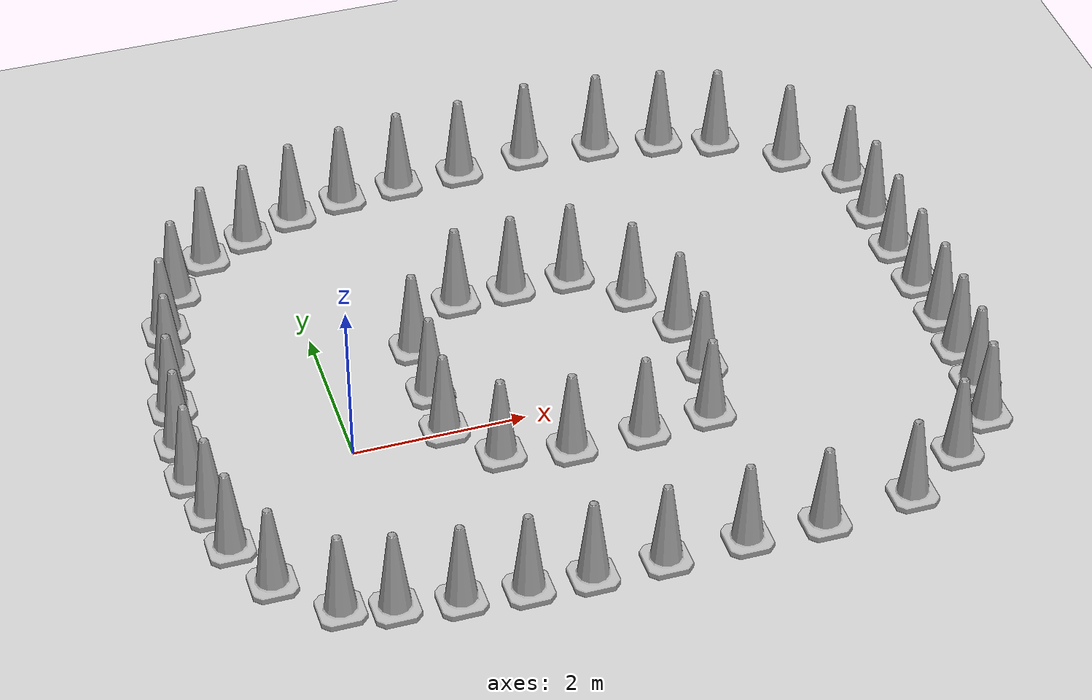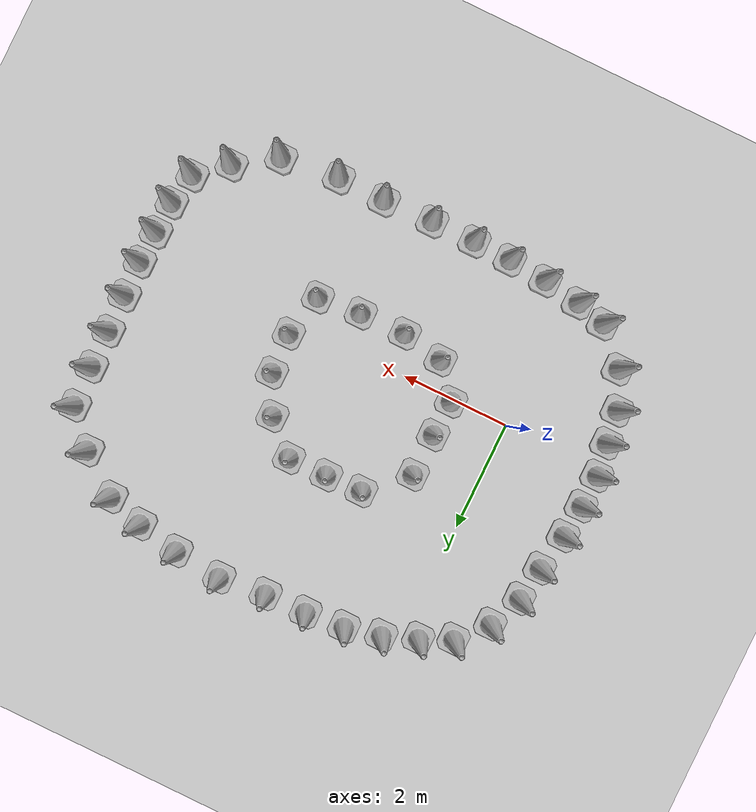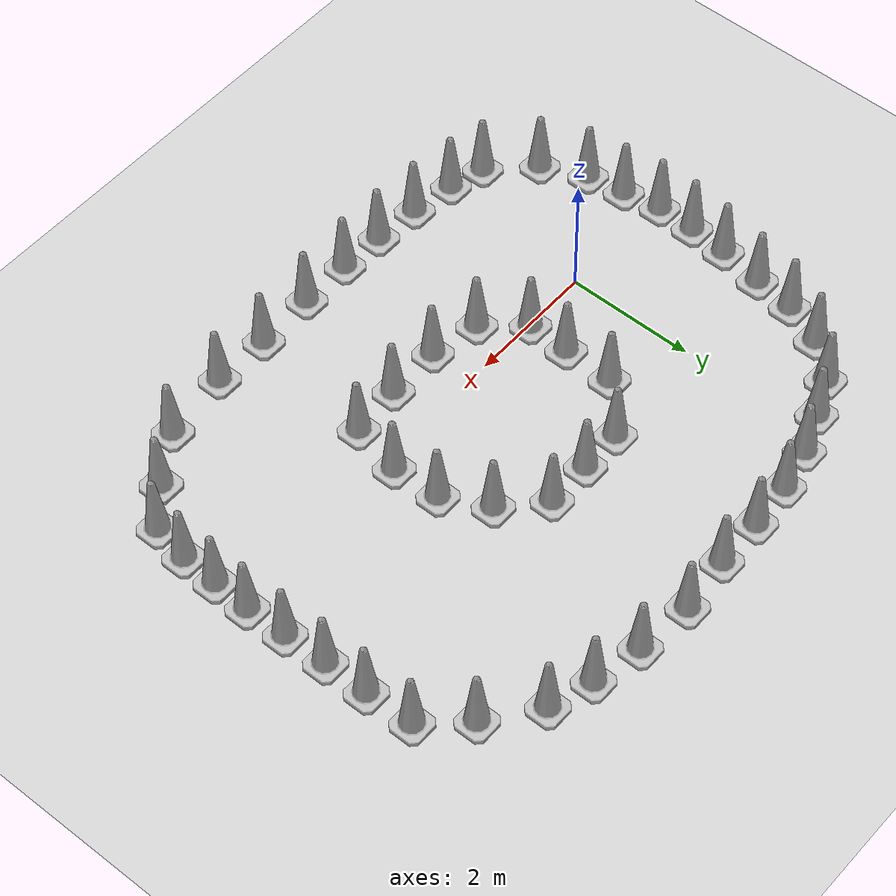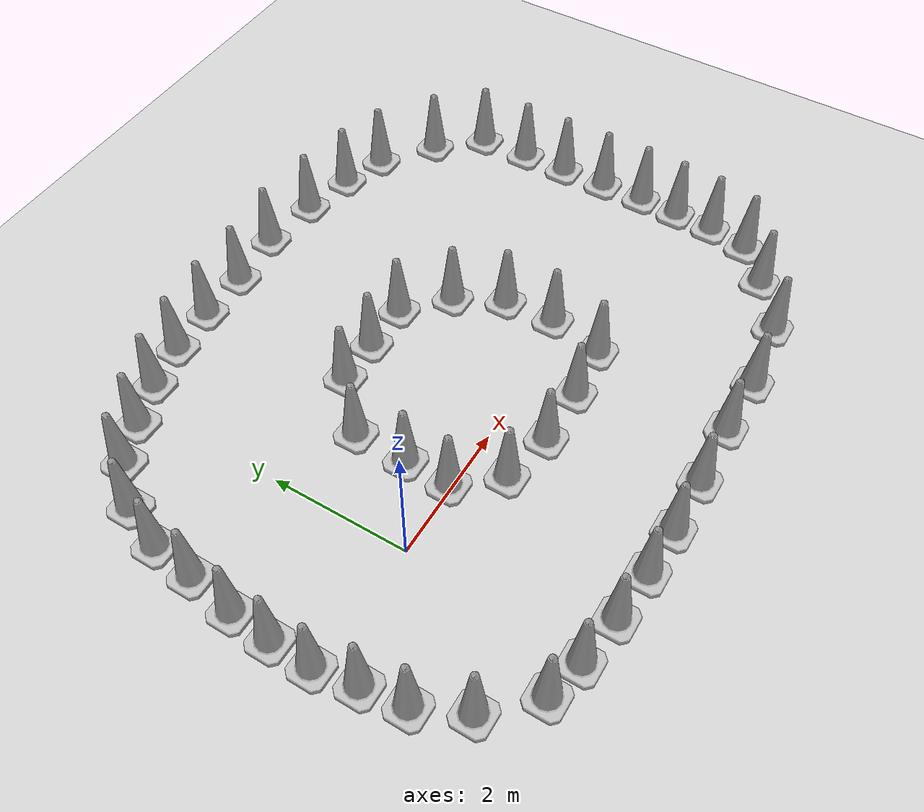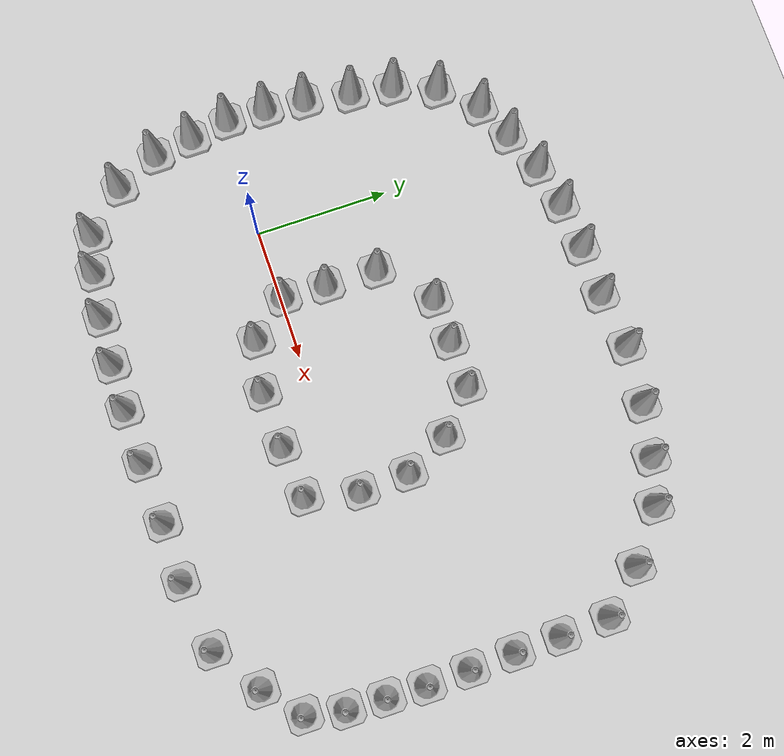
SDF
<sdf version="1.7">
 <world name="default">
  <light name="sun" type="directional">
   <pose>0 0 10 0 -0 0</pose>
   <diffuse>0.8 0.8 0.8 1</diffuse>
   <specular>0.2 0.2 0.2 1</specular>
   <attenuation>
    <range>1000</range>
    <constant>0.9</constant>
    <linear>0.01</linear>
    <quadratic>0.001</quadratic>
   </attenuation>
   <direction>-0.5 0.1 -0.9</direction>
   <spot><inner_angle>0</inner_angle><outer_angle>0</outer_angle><falloff>0</falloff></spot>
  </light>
  <model name="ground_plane">
   <static>1</static>
   <link name="link">
    <collision name="collision">
     <geometry><plane><normal>0 0 1</normal><size>100 100</size></plane></geometry>
     <surface>
      <contact><collide_bitmask>65535</collide_bitmask></contact>
      <friction><ode><mu>100</mu><mu2>50</mu2></ode></friction>
     </surface>
    </collision>
    <visual name="visual">
     <cast_shadows>0</cast_shadows>
     <geometry><plane><normal>0 0 1</normal><size>100 100</size></plane></geometry>
     <material>
      <script><uri>file://media/materials/scripts/gazebo.material</uri><name>Gazebo/Grey</name></script>
     </material>
    </visual>
   </link>
  </model>
  <gravity>0 0 -9.8</gravity>
  <magnetic_field>6e-06 2.3e-05 -4.2e-05</magnetic_field>
  <atmosphere type="adiabatic"/>
  <physics type="ode">
   <max_step_size>0.001</max_step_size>
   <real_time_factor>1</real_time_factor>
   <real_time_update_rate>1000</real_time_update_rate>
  </physics>
  <scene><ambient>0.4 0.4 0.4 1</ambient><background>0.7 0.7 0.7 1</background><shadows>1</shadows></scene>
  <audio><device>default</device></audio>
  <spherical_coordinates>
   <surface_model>EARTH_WGS84</surface_model>
   <latitude_deg>0</latitude_deg>
   <longitude_deg>0</longitude_deg>
   <elevation>0</elevation>
   <heading_deg>0</heading_deg>
  </spherical_coordinates>
  <model name="Construction Cone">
   <link name="link">
    <collision name="collision">
     <geometry>
      <mesh><scale>10 10 10</scale><uri>model://construction_cone/meshes/construction_cone.dae</uri></mesh>
     </geometry>
    </collision>
    <visual name="visual">
     <geometry>
      <mesh><scale>10 10 10</scale><uri>model://construction_cone/meshes/construction_cone.dae</uri></mesh>
     </geometry>
    </visual>
    <inertial>
     <inertia><ixx>1</ixx><ixy>0</ixy><ixz>0</ixz><iyy>1</iyy><iyz>0</iyz><izz>1</izz></inertia>
     <mass>1</mass>
    </inertial>
   </link>
   <pose>-1.81664 0.702098 -0 0 -1e-06 0.000379</pose>
  </model>
  <model name="Construction Cone_clone">
   <link name="link">
    <collision name="collision">
     <geometry>
      <mesh><scale>10 10 10</scale><uri>model://construction_cone/meshes/construction_cone.dae</uri></mesh>
     </geometry>
    </collision>
    <visual name="visual">
     <geometry>
      <mesh><scale>10 10 10</scale><uri>model://construction_cone/meshes/construction_cone.dae</uri></mesh>
     </geometry>
    </visual>
    <inertial>
     <inertia><ixx>1</ixx><ixy>0</ixy><ixz>0</ixz><iyy>1</iyy><iyz>0</iyz><izz>1</izz></inertia>
     <mass>1</mass>
    </inertial>
   </link>
   <pose>-1.83022 0.098522 -0 -0 -1e-06 0.000461</pose>
  </model>
  <model name="Construction Cone_clone_0">
   <link name="link">
    <collision name="collision">
     <geometry>
      <mesh><scale>10 10 10</scale><uri>model://construction_cone/meshes/construction_cone.dae</uri></mesh>
     </geometry>
    </collision>
    <visual name="visual">
     <geometry>
      <mesh><scale>10 10 10</scale><uri>model://construction_cone/meshes/construction_cone.dae</uri></mesh>
     </geometry>
    </visual>
    <inertial>
     <inertia><ixx>1</ixx><ixy>0</ixy><ixz>0</ixz><iyy>1</iyy><iyz>0</iyz><izz>1</izz></inertia>
     <mass>1</mass>
    </inertial>
   </link>
   <pose>-1.7603 1.31367 -0 0 -1e-06 0.000379</pose>
  </model>
  <model name="Construction Cone_clone_0_clone">
   <link name="link">
    <collision name="collision">
     <geometry>
      <mesh><scale>10 10 10</scale><uri>model://construction_cone/meshes/construction_cone.dae</uri></mesh>
     </geometry>
    </collision>
    <visual name="visual">
     <geometry>
      <mesh><scale>10 10 10</scale><uri>model://construction_cone/meshes/construction_cone.dae</uri></mesh>
     </geometry>
    </visual>
    <inertial>
     <inertia><ixx>1</ixx><ixy>0</ixy><ixz>0</ixz><iyy>1</iyy><iyz>0</iyz><izz>1</izz></inertia>
     <mass>1</mass>
    </inertial>
   </link>
   <pose>-1.6382 2.01372 -1e-05 0 -0 0.000379</pose>
  </model>
  <model name="Construction Cone_clone_0_clone_clone">
   <link name="link">
    <collision name="collision">
     <geometry>
      <mesh><scale>10 10 10</scale><uri>model://construction_cone/meshes/construction_cone.dae</uri></mesh>
     </geometry>
    </collision>
    <visual name="visual">
     <geometry>
      <mesh><scale>10 10 10</scale><uri>model://construction_cone/meshes/construction_cone.dae</uri></mesh>
     </geometry>
    </visual>
    <inertial>
     <inertia><ixx>1</ixx><ixy>0</ixy><ixz>0</ixz><iyy>1</iyy><iyz>0</iyz><izz>1</izz></inertia>
     <mass>1</mass>
    </inertial>
   </link>
   <pose>-1.54603 2.65519 -0 0 -1e-06 0.000379</pose>
  </model>
  <model name="Construction Cone_clone_0_clone_clone_clone">
   <link name="link">
    <collision name="collision">
     <geometry>
      <mesh><scale>10 10 10</scale><uri>model://construction_cone/meshes/construction_cone.dae</uri></mesh>
     </geometry>
    </collision>
    <visual name="visual">
     <geometry>
      <mesh><scale>10 10 10</scale><uri>model://construction_cone/meshes/construction_cone.dae</uri></mesh>
     </geometry>
    </visual>
    <inertial>
     <inertia><ixx>1</ixx><ixy>0</ixy><ixz>0</ixz><iyy>1</iyy><iyz>0</iyz><izz>1</izz></inertia>
     <mass>1</mass>
    </inertial>
   </link>
   <pose>-1.28378 3.2863 -0 0 -0 0.000379</pose>
  </model>
  <model name="Construction Cone_clone_0_clone_clone_clone_0">
   <link name="link">
    <collision name="collision">
     <geometry>
      <mesh><scale>10 10 10</scale><uri>model://construction_cone/meshes/construction_cone.dae</uri></mesh>
     </geometry>
    </collision>
    <visual name="visual">
     <geometry>
      <mesh><scale>10 10 10</scale><uri>model://construction_cone/meshes/construction_cone.dae</uri></mesh>
     </geometry>
    </visual>
    <inertial>
     <inertia><ixx>1</ixx><ixy>0</ixy><ixz>0</ixz><iyy>1</iyy><iyz>0</iyz><izz>1</izz></inertia>
     <mass>1</mass>
    </inertial>
   </link>
   <pose>-0.815668 3.81129 -0 1e-06 -0 0.000379</pose>
  </model>
  <model name="Construction Cone_clone_0_clone_clone_clone_1">
   <link name="link">
    <collision name="collision">
     <geometry>
      <mesh><scale>10 10 10</scale><uri>model://construction_cone/meshes/construction_cone.dae</uri></mesh>
     </geometry>
    </collision>
    <visual name="visual">
     <geometry>
      <mesh><scale>10 10 10</scale><uri>model://construction_cone/meshes/construction_cone.dae</uri></mesh>
     </geometry>
    </visual>
    <inertial>
     <inertia><ixx>1</ixx><ixy>0</ixy><ixz>0</ixz><iyy>1</iyy><iyz>0</iyz><izz>1</izz></inertia>
     <mass>1</mass>
    </inertial>
   </link>
   <pose>-0.246792 4.07003 -0 0 -0 0.000379</pose>
  </model>
  <model name="Construction Cone_clone_0_clone_clone_clone_2">
   <link name="link">
    <collision name="collision">
     <geometry>
      <mesh><scale>10 10 10</scale><uri>model://construction_cone/meshes/construction_cone.dae</uri></mesh>
     </geometry>
    </collision>
    <visual name="visual">
     <geometry>
      <mesh><scale>10 10 10</scale><uri>model://construction_cone/meshes/construction_cone.dae</uri></mesh>
     </geometry>
    </visual>
    <inertial>
     <inertia><ixx>1</ixx><ixy>0</ixy><ixz>0</ixz><iyy>1</iyy><iyz>0</iyz><izz>1</izz></inertia>
     <mass>1</mass>
    </inertial>
   </link>
   <pose>0.363966 4.30858 -0 0 -1e-06 0.000379</pose>
  </model>
  <model name="Construction Cone_clone_0_clone_clone_clone_3">
   <link name="link">
    <collision name="collision">
     <geometry>
      <mesh><scale>10 10 10</scale><uri>model://construction_cone/meshes/construction_cone.dae</uri></mesh>
     </geometry>
    </collision>
    <visual name="visual">
     <geometry>
      <mesh><scale>10 10 10</scale><uri>model://construction_cone/meshes/construction_cone.dae</uri></mesh>
     </geometry>
    </visual>
    <inertial>
     <inertia><ixx>1</ixx><ixy>0</ixy><ixz>0</ixz><iyy>1</iyy><iyz>0</iyz><izz>1</izz></inertia>
     <mass>1</mass>
    </inertial>
   </link>
   <pose>1.02528 4.46076 -0 0 -1e-06 0.000379</pose>
  </model>
  <model name="Construction Cone_clone_0_clone_clone_clone_4">
   <link name="link">
    <collision name="collision">
     <geometry>
      <mesh><scale>10 10 10</scale><uri>model://construction_cone/meshes/construction_cone.dae</uri></mesh>
     </geometry>
    </collision>
    <visual name="visual">
     <geometry>
      <mesh><scale>10 10 10</scale><uri>model://construction_cone/meshes/construction_cone.dae</uri></mesh>
     </geometry>
    </visual>
    <inertial>
     <inertia><ixx>1</ixx><ixy>0</ixy><ixz>0</ixz><iyy>1</iyy><iyz>0</iyz><izz>1</izz></inertia>
     <mass>1</mass>
    </inertial>
   </link>
   <pose>1.75042 4.5245 -0 0 -1e-06 0.000379</pose>
  </model>
  <model name="Construction Cone_clone_0_clone_clone_clone_5">
   <link name="link">
    <collision name="collision">
     <geometry>
      <mesh><scale>10 10 10</scale><uri>model://construction_cone/meshes/construction_cone.dae</uri></mesh>
     </geometry>
    </collision>
    <visual name="visual">
     <geometry>
      <mesh><scale>10 10 10</scale><uri>model://construction_cone/meshes/construction_cone.dae</uri></mesh>
     </geometry>
    </visual>
    <inertial>
     <inertia><ixx>1</ixx><ixy>0</ixy><ixz>0</ixz><iyy>1</iyy><iyz>0</iyz><izz>1</izz></inertia>
     <mass>1</mass>
    </inertial>
   </link>
   <pose>2.52907 4.54445 -1e-05 0 1e-06 0.000379</pose>
  </model>
  <model name="Construction Cone_clone_0_clone_clone_clone_6">
   <link name="link">
    <collision name="collision">
     <geometry>
      <mesh><scale>10 10 10</scale><uri>model://construction_cone/meshes/construction_cone.dae</uri></mesh>
     </geometry>
    </collision>
    <visual name="visual">
     <geometry>
      <mesh><scale>10 10 10</scale><uri>model://construction_cone/meshes/construction_cone.dae</uri></mesh>
     </geometry>
    </visual>
    <inertial>
     <inertia><ixx>1</ixx><ixy>0</ixy><ixz>0</ixz><iyy>1</iyy><iyz>0</iyz><izz>1</izz></inertia>
     <mass>1</mass>
    </inertial>
   </link>
   <pose>3.39497 4.63841 -0 0 -0 0.000379</pose>
  </model>
  <model name="Construction Cone_clone_0_clone_clone_clone_7">
   <link name="link">
    <collision name="collision">
     <geometry>
      <mesh><scale>10 10 10</scale><uri>model://construction_cone/meshes/construction_cone.dae</uri></mesh>
     </geometry>
    </collision>
    <visual name="visual">
     <geometry>
      <mesh><scale>10 10 10</scale><uri>model://construction_cone/meshes/construction_cone.dae</uri></mesh>
     </geometry>
    </visual>
    <inertial>
     <inertia><ixx>1</ixx><ixy>0</ixy><ixz>0</ixz><iyy>1</iyy><iyz>0</iyz><izz>1</izz></inertia>
     <mass>1</mass>
    </inertial>
   </link>
   <pose>4.28308 4.55094 -1e-05 0 -0 0.000379</pose>
  </model>
  <model name="Construction Cone_clone_0_clone_clone_clone_8">
   <link name="link">
    <collision name="collision">
     <geometry>
      <mesh><scale>10 10 10</scale><uri>model://construction_cone/meshes/construction_cone.dae</uri></mesh>
     </geometry>
    </collision>
    <visual name="visual">
     <geometry>
      <mesh><scale>10 10 10</scale><uri>model://construction_cone/meshes/construction_cone.dae</uri></mesh>
     </geometry>
    </visual>
    <inertial>
     <inertia><ixx>1</ixx><ixy>0</ixy><ixz>0</ixz><iyy>1</iyy><iyz>0</iyz><izz>1</izz></inertia>
     <mass>1</mass>
    </inertial>
   </link>
   <pose>5.06367 4.40057 -0 0 -0 0.000379</pose>
  </model>
  <model name="Construction Cone_clone_0_clone_clone_clone_9">
   <link name="link">
    <collision name="collision">
     <geometry>
      <mesh><scale>10 10 10</scale><uri>model://construction_cone/meshes/construction_cone.dae</uri></mesh>
     </geometry>
    </collision>
    <visual name="visual">
     <geometry>
      <mesh><scale>10 10 10</scale><uri>model://construction_cone/meshes/construction_cone.dae</uri></mesh>
     </geometry>
    </visual>
    <inertial>
     <inertia><ixx>1</ixx><ixy>0</ixy><ixz>0</ixz><iyy>1</iyy><iyz>0</iyz><izz>1</izz></inertia>
     <mass>1</mass>
    </inertial>
   </link>
   <pose>5.73854 4.19569 0 0 -0 0.000379</pose>
  </model>
  <model name="Construction Cone_clone_0_clone_clone_clone_10">
   <link name="link">
    <collision name="collision">
     <geometry>
      <mesh><scale>10 10 10</scale><uri>model://construction_cone/meshes/construction_cone.dae</uri></mesh>
     </geometry>
    </collision>
    <visual name="visual">
     <geometry>
      <mesh><scale>10 10 10</scale><uri>model://construction_cone/meshes/construction_cone.dae</uri></mesh>
     </geometry>
    </visual>
    <inertial>
     <inertia><ixx>1</ixx><ixy>0</ixy><ixz>0</ixz><iyy>1</iyy><iyz>0</iyz><izz>1</izz></inertia>
     <mass>1</mass>
    </inertial>
   </link>
   <pose>6.4758 3.63568 -0 0 -1e-06 0.000379</pose>
  </model>
  <model name="Construction Cone_clone_0_clone_clone_clone_11">
   <link name="link">
    <collision name="collision">
     <geometry>
      <mesh><scale>10 10 10</scale><uri>model://construction_cone/meshes/construction_cone.dae</uri></mesh>
     </geometry>
    </collision>
    <visual name="visual">
     <geometry>
      <mesh><scale>10 10 10</scale><uri>model://construction_cone/meshes/construction_cone.dae</uri></mesh>
     </geometry>
    </visual>
    <inertial>
     <inertia><ixx>1</ixx><ixy>0</ixy><ixz>0</ixz><iyy>1</iyy><iyz>0</iyz><izz>1</izz></inertia>
     <mass>1</mass>
    </inertial>
   </link>
   <pose>1.06718 0.047357 -0 0 -1e-06 0.000379</pose>
  </model>
  <model name="Construction Cone_clone_0_clone_clone_clone_12">
   <link name="link">
    <collision name="collision">
     <geometry>
      <mesh><scale>10 10 10</scale><uri>model://construction_cone/meshes/construction_cone.dae</uri></mesh>
     </geometry>
    </collision>
    <visual name="visual">
     <geometry>
      <mesh><scale>10 10 10</scale><uri>model://construction_cone/meshes/construction_cone.dae</uri></mesh>
     </geometry>
    </visual>
    <inertial>
     <inertia><ixx>1</ixx><ixy>0</ixy><ixz>0</ixz><iyy>1</iyy><iyz>0</iyz><izz>1</izz></inertia>
     <mass>1</mass>
    </inertial>
   </link>
   <pose>1.09208 0.715745 -0 0 -1e-06 0.000379</pose>
  </model>
  <model name="Construction Cone_clone_0_clone_clone_clone_13">
   <link name="link">
    <collision name="collision">
     <geometry>
      <mesh><scale>10 10 10</scale><uri>model://construction_cone/meshes/construction_cone.dae</uri></mesh>
     </geometry>
    </collision>
    <visual name="visual">
     <geometry>
      <mesh><scale>10 10 10</scale><uri>model://construction_cone/meshes/construction_cone.dae</uri></mesh>
     </geometry>
    </visual>
    <inertial>
     <inertia><ixx>1</ixx><ixy>0</ixy><ixz>0</ixz><iyy>1</iyy><iyz>0</iyz><izz>1</izz></inertia>
     <mass>1</mass>
    </inertial>
   </link>
   <pose>1.10929 1.50665 -0 0 -0 0.000379</pose>
  </model>
  <model name="Construction Cone_clone_0_clone_clone_clone_15">
   <link name="link">
    <collision name="collision">
     <geometry>
      <mesh><scale>10 10 10</scale><uri>model://construction_cone/meshes/construction_cone.dae</uri></mesh>
     </geometry>
    </collision>
    <visual name="visual">
     <geometry>
      <mesh><scale>10 10 10</scale><uri>model://construction_cone/meshes/construction_cone.dae</uri></mesh>
     </geometry>
    </visual>
    <inertial>
     <inertia><ixx>1</ixx><ixy>0</ixy><ixz>0</ixz><iyy>1</iyy><iyz>0</iyz><izz>1</izz></inertia>
     <mass>1</mass>
    </inertial>
   </link>
   <pose>1.80349 2.16505 -0 0 -0 0.000379</pose>
  </model>
  <model name="Construction Cone_clone_0_clone_clone_clone_16">
   <link name="link">
    <collision name="collision">
     <geometry>
      <mesh><scale>10 10 10</scale><uri>model://construction_cone/meshes/construction_cone.dae</uri></mesh>
     </geometry>
    </collision>
    <visual name="visual">
     <geometry>
      <mesh><scale>10 10 10</scale><uri>model://construction_cone/meshes/construction_cone.dae</uri></mesh>
     </geometry>
    </visual>
    <inertial>
     <inertia><ixx>1</ixx><ixy>0</ixy><ixz>0</ixz><iyy>1</iyy><iyz>0</iyz><izz>1</izz></inertia>
     <mass>1</mass>
    </inertial>
   </link>
   <pose>2.48303 2.1852 -0 0 -0 0.000379</pose>
  </model>
  <model name="Construction Cone_clone_0_clone_clone_clone_17">
   <link name="link">
    <collision name="collision">
     <geometry>
      <mesh><scale>10 10 10</scale><uri>model://construction_cone/meshes/construction_cone.dae</uri></mesh>
     </geometry>
    </collision>
    <visual name="visual">
     <geometry>
      <mesh><scale>10 10 10</scale><uri>model://construction_cone/meshes/construction_cone.dae</uri></mesh>
     </geometry>
    </visual>
    <inertial>
     <inertia><ixx>1</ixx><ixy>0</ixy><ixz>0</ixz><iyy>1</iyy><iyz>0</iyz><izz>1</izz></inertia>
     <mass>1</mass>
    </inertial>
   </link>
   <pose>3.21096 2.19804 -0 0 -1e-06 0.000379</pose>
  </model>
  <model name="Construction Cone_clone_0_clone_clone_clone_18">
   <link name="link">
    <collision name="collision">
     <geometry>
      <mesh><scale>10 10 10</scale><uri>model://construction_cone/meshes/construction_cone.dae</uri></mesh>
     </geometry>
    </collision>
    <visual name="visual">
     <geometry>
      <mesh><scale>10 10 10</scale><uri>model://construction_cone/meshes/construction_cone.dae</uri></mesh>
     </geometry>
    </visual>
    <inertial>
     <inertia><ixx>1</ixx><ixy>0</ixy><ixz>0</ixz><iyy>1</iyy><iyz>0</iyz><izz>1</izz></inertia>
     <mass>1</mass>
    </inertial>
   </link>
   <pose>3.7993 1.65904 -0 0 -0 0.000379</pose>
  </model>
  <model name="Construction Cone_clone_0_clone_clone_clone_19">
   <link name="link">
    <collision name="collision">
     <geometry>
      <mesh><scale>10 10 10</scale><uri>model://construction_cone/meshes/construction_cone.dae</uri></mesh>
     </geometry>
    </collision>
    <visual name="visual">
     <geometry>
      <mesh><scale>10 10 10</scale><uri>model://construction_cone/meshes/construction_cone.dae</uri></mesh>
     </geometry>
    </visual>
    <inertial>
     <inertia><ixx>1</ixx><ixy>0</ixy><ixz>0</ixz><iyy>1</iyy><iyz>0</iyz><izz>1</izz></inertia>
     <mass>1</mass>
    </inertial>
   </link>
   <pose>4.14352 0.972121 -8e-06 3e-06 -0 0.000379</pose>
  </model>
  <model name="Construction Cone_clone_0_clone_clone_clone_20">
   <link name="link">
    <collision name="collision">
     <geometry>
      <mesh><scale>10 10 10</scale><uri>model://construction_cone/meshes/construction_cone.dae</uri></mesh>
     </geometry>
    </collision>
    <visual name="visual">
     <geometry>
      <mesh><scale>10 10 10</scale><uri>model://construction_cone/meshes/construction_cone.dae</uri></mesh>
     </geometry>
    </visual>
    <inertial>
     <inertia><ixx>1</ixx><ixy>0</ixy><ixz>0</ixz><iyy>1</iyy><iyz>0</iyz><izz>1</izz></inertia>
     <mass>1</mass>
    </inertial>
   </link>
   <pose>4.17776 0.219383 -0 0 -1e-06 0.000379</pose>
  </model>
  <model name="Construction Cone_clone_0_clone_clone_clone_21">
   <link name="link">
    <collision name="collision">
     <geometry>
      <mesh><scale>10 10 10</scale><uri>model://construction_cone/meshes/construction_cone.dae</uri></mesh>
     </geometry>
    </collision>
    <visual name="visual">
     <geometry>
      <mesh><scale>10 10 10</scale><uri>model://construction_cone/meshes/construction_cone.dae</uri></mesh>
     </geometry>
    </visual>
    <inertial>
     <inertia><ixx>1</ixx><ixy>0</ixy><ixz>0</ixz><iyy>1</iyy><iyz>0</iyz><izz>1</izz></inertia>
     <mass>1</mass>
    </inertial>
   </link>
   <pose>3.99371 -0.583755 -0 0 -1e-06 0.000379</pose>
  </model>
  <model name="Construction Cone_clone_0_clone_clone_clone_22">
   <link name="link">
    <collision name="collision">
     <geometry>
      <mesh><scale>10 10 10</scale><uri>model://construction_cone/meshes/construction_cone.dae</uri></mesh>
     </geometry>
    </collision>
    <visual name="visual">
     <geometry>
      <mesh><scale>10 10 10</scale><uri>model://construction_cone/meshes/construction_cone.dae</uri></mesh>
     </geometry>
    </visual>
    <inertial>
     <inertia><ixx>1</ixx><ixy>0</ixy><ixz>0</ixz><iyy>1</iyy><iyz>0</iyz><izz>1</izz></inertia>
     <mass>1</mass>
    </inertial>
   </link>
   <pose>7.03013 3.02419 -0 0 -0 0.000379</pose>
  </model>
  <model name="Construction Cone_clone_0_clone_clone_clone_23">
   <link name="link">
    <collision name="collision">
     <geometry>
      <mesh><scale>10 10 10</scale><uri>model://construction_cone/meshes/construction_cone.dae</uri></mesh>
     </geometry>
    </collision>
    <visual name="visual">
     <geometry>
      <mesh><scale>10 10 10</scale><uri>model://construction_cone/meshes/construction_cone.dae</uri></mesh>
     </geometry>
    </visual>
    <inertial>
     <inertia><ixx>1</ixx><ixy>0</ixy><ixz>0</ixz><iyy>1</iyy><iyz>0</iyz><izz>1</izz></inertia>
     <mass>1</mass>
    </inertial>
   </link>
   <pose>7.06168 2.27367 -0 0 -0 0.000379</pose>
  </model>
  <model name="Construction Cone_clone_0_clone_clone_clone_24">
   <link name="link">
    <collision name="collision">
     <geometry>
      <mesh><scale>10 10 10</scale><uri>model://construction_cone/meshes/construction_cone.dae</uri></mesh>
     </geometry>
    </collision>
    <visual name="visual">
     <geometry>
      <mesh><scale>10 10 10</scale><uri>model://construction_cone/meshes/construction_cone.dae</uri></mesh>
     </geometry>
    </visual>
    <inertial>
     <inertia><ixx>1</ixx><ixy>0</ixy><ixz>0</ixz><iyy>1</iyy><iyz>0</iyz><izz>1</izz></inertia>
     <mass>1</mass>
    </inertial>
   </link>
   <pose>7.06789 1.57567 -0 0 -0 0.000379</pose>
  </model>
  <model name="Construction Cone_clone_0_clone_clone_clone_25">
   <link name="link">
    <collision name="collision">
     <geometry>
      <mesh><scale>10 10 10</scale><uri>model://construction_cone/meshes/construction_cone.dae</uri></mesh>
     </geometry>
    </collision>
    <visual name="visual">
     <geometry>
      <mesh><scale>10 10 10</scale><uri>model://construction_cone/meshes/construction_cone.dae</uri></mesh>
     </geometry>
    </visual>
    <inertial>
     <inertia><ixx>1</ixx><ixy>0</ixy><ixz>0</ixz><iyy>1</iyy><iyz>0</iyz><izz>1</izz></inertia>
     <mass>1</mass>
    </inertial>
   </link>
   <pose>7.08673 0.886311 -1e-05 0 -0 0.000379</pose>
  </model>
  <model name="Construction Cone_clone_0_clone_clone_clone_26">
   <link name="link">
    <collision name="collision">
     <geometry>
      <mesh><scale>10 10 10</scale><uri>model://construction_cone/meshes/construction_cone.dae</uri></mesh>
     </geometry>
    </collision>
    <visual name="visual">
     <geometry>
      <mesh><scale>10 10 10</scale><uri>model://construction_cone/meshes/construction_cone.dae</uri></mesh>
     </geometry>
    </visual>
    <inertial>
     <inertia><ixx>1</ixx><ixy>0</ixy><ixz>0</ixz><iyy>1</iyy><iyz>0</iyz><izz>1</izz></inertia>
     <mass>1</mass>
    </inertial>
   </link>
   <pose>7.10292 0.230868 -0 1e-06 -0 0.000379</pose>
  </model>
  <model name="Construction Cone_clone_0_clone_clone_clone_27">
   <link name="link">
    <collision name="collision">
     <geometry>
      <mesh><scale>10 10 10</scale><uri>model://construction_cone/meshes/construction_cone.dae</uri></mesh>
     </geometry>
    </collision>
    <visual name="visual">
     <geometry>
      <mesh><scale>10 10 10</scale><uri>model://construction_cone/meshes/construction_cone.dae</uri></mesh>
     </geometry>
    </visual>
    <inertial>
     <inertia><ixx>1</ixx><ixy>0</ixy><ixz>0</ixz><iyy>1</iyy><iyz>0</iyz><izz>1</izz></inertia>
     <mass>1</mass>
    </inertial>
   </link>
   <pose>7.078 -0.365962 0 0 -0 0.000379</pose>
  </model>
  <model name="Construction Cone_clone_0_clone_clone_clone_28">
   <link name="link">
    <collision name="collision">
     <geometry>
      <mesh><scale>10 10 10</scale><uri>model://construction_cone/meshes/construction_cone.dae</uri></mesh>
     </geometry>
    </collision>
    <visual name="visual">
     <geometry>
      <mesh><scale>10 10 10</scale><uri>model://construction_cone/meshes/construction_cone.dae</uri></mesh>
     </geometry>
    </visual>
    <inertial>
     <inertia><ixx>1</ixx><ixy>0</ixy><ixz>0</ixz><iyy>1</iyy><iyz>0</iyz><izz>1</izz></inertia>
     <mass>1</mass>
    </inertial>
   </link>
   <pose>7.05525 -0.95823 -1e-05 0 -0 0.000379</pose>
  </model>
  <model name="Construction Cone_clone_0_clone_clone_clone_29">
   <link name="link">
    <collision name="collision">
     <geometry>
      <mesh><scale>10 10 10</scale><uri>model://construction_cone/meshes/construction_cone.dae</uri></mesh>
     </geometry>
    </collision>
    <visual name="visual">
     <geometry>
      <mesh><scale>10 10 10</scale><uri>model://construction_cone/meshes/construction_cone.dae</uri></mesh>
     </geometry>
    </visual>
    <inertial>
     <inertia><ixx>1</ixx><ixy>0</ixy><ixz>0</ixz><iyy>1</iyy><iyz>0</iyz><izz>1</izz></inertia>
     <mass>1</mass>
    </inertial>
   </link>
   <pose>6.93692 -1.55114 -0 0 -0 0.000379</pose>
  </model>
  <model name="Construction Cone_clone_0_clone_clone_clone_30">
   <link name="link">
    <collision name="collision">
     <geometry>
      <mesh><scale>10 10 10</scale><uri>model://construction_cone/meshes/construction_cone.dae</uri></mesh>
     </geometry>
    </collision>
    <visual name="visual">
     <geometry>
      <mesh><scale>10 10 10</scale><uri>model://construction_cone/meshes/construction_cone.dae</uri></mesh>
     </geometry>
    </visual>
    <inertial>
     <inertia><ixx>1</ixx><ixy>0</ixy><ixz>0</ixz><iyy>1</iyy><iyz>0</iyz><izz>1</izz></inertia>
     <mass>1</mass>
    </inertial>
   </link>
   <pose>6.39545 -2.02269 -1e-05 0 -0 0.000379</pose>
  </model>
  <model name="Construction Cone_clone_0_clone_clone_clone_31">
   <link name="link">
    <collision name="collision">
     <geometry>
      <mesh><scale>10 10 10</scale><uri>model://construction_cone/meshes/construction_cone.dae</uri></mesh>
     </geometry>
    </collision>
    <visual name="visual">
     <geometry>
      <mesh><scale>10 10 10</scale><uri>model://construction_cone/meshes/construction_cone.dae</uri></mesh>
     </geometry>
    </visual>
    <inertial>
     <inertia><ixx>1</ixx><ixy>0</ixy><ixz>0</ixz><iyy>1</iyy><iyz>0</iyz><izz>1</izz></inertia>
     <mass>1</mass>
    </inertial>
   </link>
   <pose>5.65772 -2.51527 -8e-06 1e-06 -0 0.000379</pose>
  </model>
  <model name="Construction Cone_clone_0_clone_clone_clone_32">
   <link name="link">
    <collision name="collision">
     <geometry>
      <mesh><scale>10 10 10</scale><uri>model://construction_cone/meshes/construction_cone.dae</uri></mesh>
     </geometry>
    </collision>
    <visual name="visual">
     <geometry>
      <mesh><scale>10 10 10</scale><uri>model://construction_cone/meshes/construction_cone.dae</uri></mesh>
     </geometry>
    </visual>
    <inertial>
     <inertia><ixx>1</ixx><ixy>0</ixy><ixz>0</ixz><iyy>1</iyy><iyz>0</iyz><izz>1</izz></inertia>
     <mass>1</mass>
    </inertial>
   </link>
   <pose>4.58539 -2.64806 -0 0 -1e-06 0.000379</pose>
  </model>
  <model name="Construction Cone_clone_0_clone_clone_clone_33">
   <link name="link">
    <collision name="collision">
     <geometry>
      <mesh><scale>10 10 10</scale><uri>model://construction_cone/meshes/construction_cone.dae</uri></mesh>
     </geometry>
    </collision>
    <visual name="visual">
     <geometry>
      <mesh><scale>10 10 10</scale><uri>model://construction_cone/meshes/construction_cone.dae</uri></mesh>
     </geometry>
    </visual>
    <inertial>
     <inertia><ixx>1</ixx><ixy>0</ixy><ixz>0</ixz><iyy>1</iyy><iyz>0</iyz><izz>1</izz></inertia>
     <mass>1</mass>
    </inertial>
   </link>
   <pose>3.69481 -2.6396 -0 0 -1e-06 0.000379</pose>
  </model>
  <model name="Construction Cone_clone_0_clone_clone_clone_34">
   <link name="link">
    <collision name="collision">
     <geometry>
      <mesh><scale>10 10 10</scale><uri>model://construction_cone/meshes/construction_cone.dae</uri></mesh>
     </geometry>
    </collision>
    <visual name="visual">
     <geometry>
      <mesh><scale>10 10 10</scale><uri>model://construction_cone/meshes/construction_cone.dae</uri></mesh>
     </geometry>
    </visual>
    <inertial>
     <inertia><ixx>1</ixx><ixy>0</ixy><ixz>0</ixz><iyy>1</iyy><iyz>0</iyz><izz>1</izz></inertia>
     <mass>1</mass>
    </inertial>
   </link>
   <pose>2.76 -2.67652 -0 0 -1e-06 0.000379</pose>
  </model>
  <model name="Construction Cone_clone_0_clone_clone_clone_35">
   <link name="link">
    <collision name="collision">
     <geometry>
      <mesh><scale>10 10 10</scale><uri>model://construction_cone/meshes/construction_cone.dae</uri></mesh>
     </geometry>
    </collision>
    <visual name="visual">
     <geometry>
      <mesh><scale>10 10 10</scale><uri>model://construction_cone/meshes/construction_cone.dae</uri></mesh>
     </geometry>
    </visual>
    <inertial>
     <inertia><ixx>1</ixx><ixy>0</ixy><ixz>0</ixz><iyy>1</iyy><iyz>0</iyz><izz>1</izz></inertia>
     <mass>1</mass>
    </inertial>
   </link>
   <pose>1.93682 -2.68487 0 -1e-06 -0 0.000379</pose>
  </model>
  <model name="Construction Cone_clone_0_clone_clone_clone_36">
   <link name="link">
    <collision name="collision">
     <geometry>
      <mesh><scale>10 10 10</scale><uri>model://construction_cone/meshes/construction_cone.dae</uri></mesh>
     </geometry>
    </collision>
    <visual name="visual">
     <geometry>
      <mesh><scale>10 10 10</scale><uri>model://construction_cone/meshes/construction_cone.dae</uri></mesh>
     </geometry>
    </visual>
    <inertial>
     <inertia><ixx>1</ixx><ixy>0</ixy><ixz>0</ixz><iyy>1</iyy><iyz>0</iyz><izz>1</izz></inertia>
     <mass>1</mass>
    </inertial>
   </link>
   <pose>1.22605 -2.6643 -0 0 -0 0.000379</pose>
  </model>
  <model name="Construction Cone_clone_0_clone_clone_clone_37">
   <link name="link">
    <collision name="collision">
     <geometry>
      <mesh><scale>10 10 10</scale><uri>model://construction_cone/meshes/construction_cone.dae</uri></mesh>
     </geometry>
    </collision>
    <visual name="visual">
     <geometry>
      <mesh><scale>10 10 10</scale><uri>model://construction_cone/meshes/construction_cone.dae</uri></mesh>
     </geometry>
    </visual>
    <inertial>
     <inertia><ixx>1</ixx><ixy>0</ixy><ixz>0</ixz><iyy>1</iyy><iyz>0</iyz><izz>1</izz></inertia>
     <mass>1</mass>
    </inertial>
   </link>
   <pose>0.50004 -2.60927 -1e-06 2e-06 2e-06 0.000379</pose>
  </model>
  <model name="Construction Cone_clone_0_clone_clone_clone_38">
   <link name="link">
    <collision name="collision">
     <geometry>
      <mesh><scale>10 10 10</scale><uri>model://construction_cone/meshes/construction_cone.dae</uri></mesh>
     </geometry>
    </collision>
    <visual name="visual">
     <geometry>
      <mesh><scale>10 10 10</scale><uri>model://construction_cone/meshes/construction_cone.dae</uri></mesh>
     </geometry>
    </visual>
    <inertial>
     <inertia><ixx>1</ixx><ixy>0</ixy><ixz>0</ixz><iyy>1</iyy><iyz>0</iyz><izz>1</izz></inertia>
     <mass>1</mass>
    </inertial>
   </link>
   <pose>-0.195096 -2.50744 -0 0 -0 0.000379</pose>
  </model>
  <model name="Construction Cone_clone_0_clone_clone_clone_39">
   <link name="link">
    <collision name="collision">
     <geometry>
      <mesh><scale>10 10 10</scale><uri>model://construction_cone/meshes/construction_cone.dae</uri></mesh>
     </geometry>
    </collision>
    <visual name="visual">
     <geometry>
      <mesh><scale>10 10 10</scale><uri>model://construction_cone/meshes/construction_cone.dae</uri></mesh>
     </geometry>
    </visual>
    <inertial>
     <inertia><ixx>1</ixx><ixy>0</ixy><ixz>0</ixz><iyy>1</iyy><iyz>0</iyz><izz>1</izz></inertia>
     <mass>1</mass>
    </inertial>
   </link>
   <pose>-0.753414 -2.3696 -1e-05 0 1e-06 0.000379</pose>
  </model>
  <model name="Construction Cone_clone_0_clone_clone_clone_40">
   <link name="link">
    <collision name="collision">
     <geometry>
      <mesh><scale>10 10 10</scale><uri>model://construction_cone/meshes/construction_cone.dae</uri></mesh>
     </geometry>
    </collision>
    <visual name="visual">
     <geometry>
      <mesh><scale>10 10 10</scale><uri>model://construction_cone/meshes/construction_cone.dae</uri></mesh>
     </geometry>
    </visual>
    <inertial>
     <inertia><ixx>1</ixx><ixy>0</ixy><ixz>0</ixz><iyy>1</iyy><iyz>0</iyz><izz>1</izz></inertia>
     <mass>1</mass>
    </inertial>
   </link>
   <pose>-1.34399 -1.76484 -8e-06 1e-06 -0 0.000379</pose>
  </model>
  <model name="Construction Cone_clone_0_clone_clone_clone_41">
   <link name="link">
    <collision name="collision">
     <geometry>
      <mesh><scale>10 10 10</scale><uri>model://construction_cone/meshes/construction_cone.dae</uri></mesh>
     </geometry>
    </collision>
    <visual name="visual">
     <geometry>
      <mesh><scale>10 10 10</scale><uri>model://construction_cone/meshes/construction_cone.dae</uri></mesh>
     </geometry>
    </visual>
    <inertial>
     <inertia><ixx>1</ixx><ixy>0</ixy><ixz>0</ixz><iyy>1</iyy><iyz>0</iyz><izz>1</izz></inertia>
     <mass>1</mass>
    </inertial>
   </link>
   <pose>-1.64787 -1.09803 -0 0 -0 0.000379</pose>
  </model>
  <model name="Construction Cone_clone_0_clone_clone_clone_42">
   <link name="link">
    <collision name="collision">
     <geometry>
      <mesh><scale>10 10 10</scale><uri>model://construction_cone/meshes/construction_cone.dae</uri></mesh>
     </geometry>
    </collision>
    <visual name="visual">
     <geometry>
      <mesh><scale>10 10 10</scale><uri>model://construction_cone/meshes/construction_cone.dae</uri></mesh>
     </geometry>
    </visual>
    <inertial>
     <inertia><ixx>1</ixx><ixy>0</ixy><ixz>0</ixz><iyy>1</iyy><iyz>0</iyz><izz>1</izz></inertia>
     <mass>1</mass>
    </inertial>
   </link>
   <pose>-1.73225 -0.494183 -1e-05 0 -0 0.000379</pose>
  </model>
  <model name="Construction Cone_clone_0_clone_clone_clone_43">
   <link name="link">
    <collision name="collision">
     <geometry>
      <mesh><scale>10 10 10</scale><uri>model://construction_cone/meshes/construction_cone.dae</uri></mesh>
     </geometry>
    </collision>
    <visual name="visual">
     <geometry>
      <mesh><scale>10 10 10</scale><uri>model://construction_cone/meshes/construction_cone.dae</uri></mesh>
     </geometry>
    </visual>
    <inertial>
     <inertia><ixx>1</ixx><ixy>0</ixy><ixz>0</ixz><iyy>1</iyy><iyz>0</iyz><izz>1</izz></inertia>
     <mass>1</mass>
    </inertial>
   </link>
   <pose>1.55419 -0.532554 -0 0 -0 0.000379</pose>
  </model>
  <model name="Construction Cone_clone_0_clone_clone_clone_44">
   <link name="link">
    <collision name="collision">
     <geometry>
      <mesh><scale>10 10 10</scale><uri>model://construction_cone/meshes/construction_cone.dae</uri></mesh>
     </geometry>
    </collision>
    <visual name="visual">
     <geometry>
      <mesh><scale>10 10 10</scale><uri>model://construction_cone/meshes/construction_cone.dae</uri></mesh>
     </geometry>
    </visual>
    <inertial>
     <inertia><ixx>1</ixx><ixy>0</ixy><ixz>0</ixz><iyy>1</iyy><iyz>0</iyz><izz>1</izz></inertia>
     <mass>1</mass>
    </inertial>
   </link>
   <pose>2.33205 -0.679237 -0 0 -1e-06 0.000379</pose>
  </model>
  <model name="Construction Cone_clone_0_clone_clone_clone_45">
   <link name="link">
    <collision name="collision">
     <geometry>
      <mesh><scale>10 10 10</scale><uri>model://construction_cone/meshes/construction_cone.dae</uri></mesh>
     </geometry>
    </collision>
    <visual name="visual">
     <geometry>
      <mesh><scale>10 10 10</scale><uri>model://construction_cone/meshes/construction_cone.dae</uri></mesh>
     </geometry>
    </visual>
    <inertial>
     <inertia><ixx>1</ixx><ixy>0</ixy><ixz>0</ixz><iyy>1</iyy><iyz>0</iyz><izz>1</izz></inertia>
     <mass>1</mass>
    </inertial>
   </link>
   <pose>3.18796 -0.661899 -1e-06 2e-06 2e-06 0.000379</pose>
  </model>
 </world>
</sdf>
